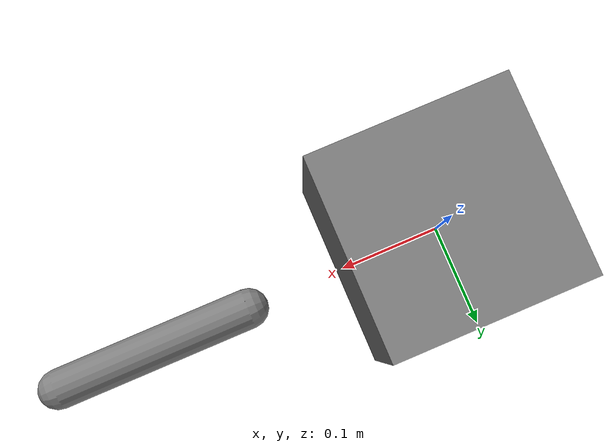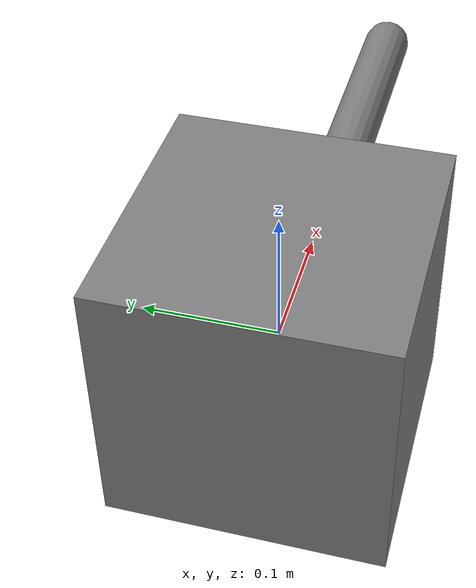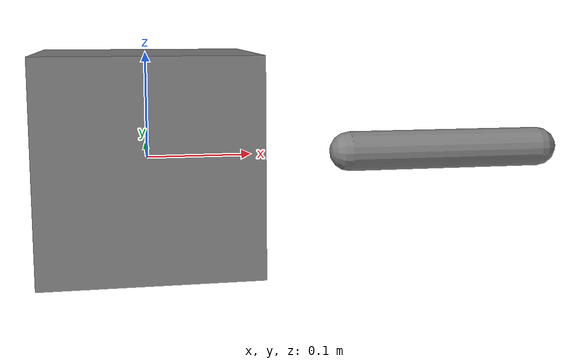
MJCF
<mujoco model="free_with_child">
  <worldbody>
    <body name="chassis" pos="0 0 0">
      <freejoint/>
      <inertial mass="1.0" pos="0 0 0" diaginertia="0.1 0.1 0.1"/>
      <geom type="box" size="0.1 0.1 0.1" contype="0" conaffinity="0"/>
      <body name="arm" pos="0.2 0 0">
        <joint type="hinge" axis="0 1 0"/>
        <inertial mass="0.5" pos="0.1 0 0" diaginertia="0.01 0.01 0.01"/>
        <geom type="capsule" fromto="0 0 0 0.2 0 0" size="0.02" contype="0" conaffinity="0"/>
      </body>
    </body>
  </worldbody>
</mujoco>
